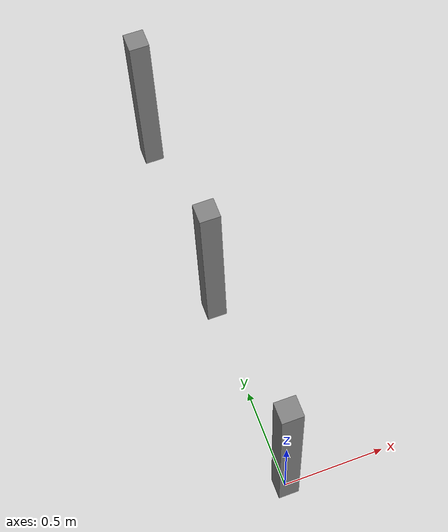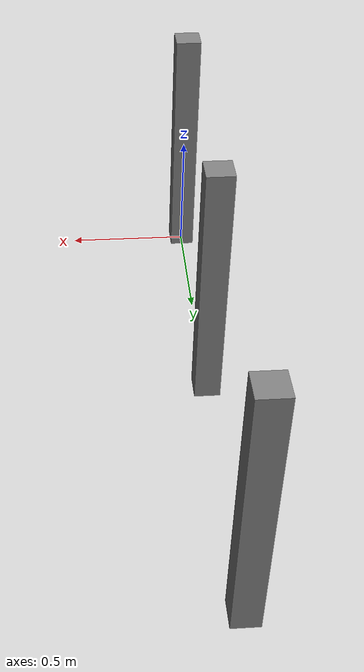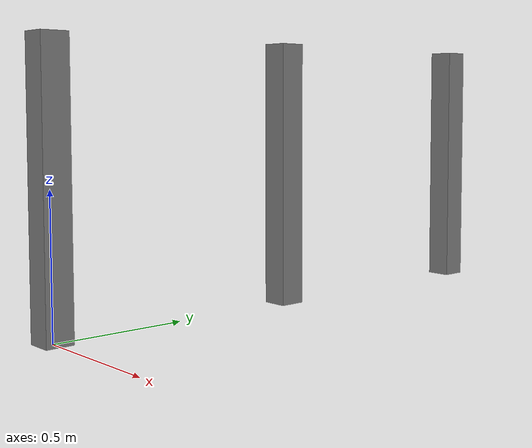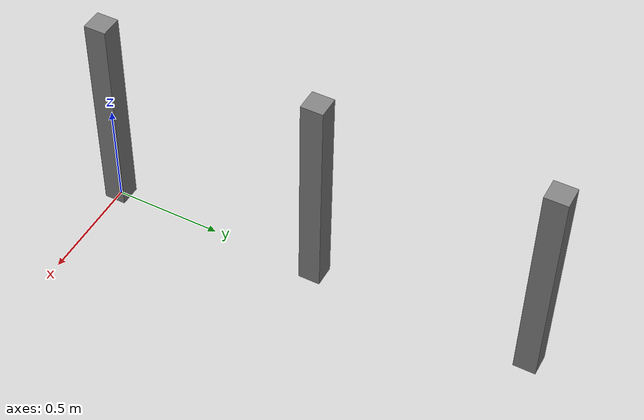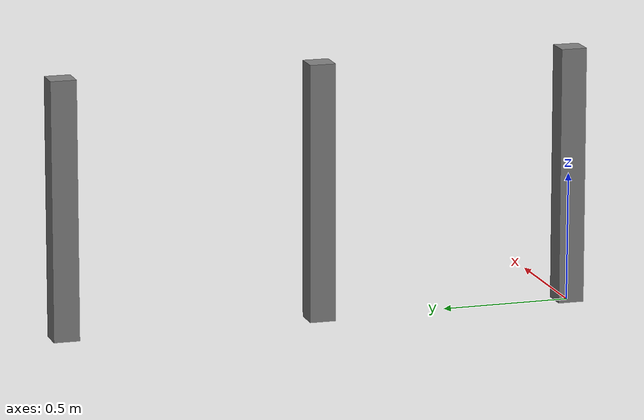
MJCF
<mujoco model="joint_damping">
  <compiler angle="radian"/>
  <worldbody>
    <body name="body1" pos="0 0 0.5">
      <geom type="box" size="0.05 0.05 0.5"/>
      <joint name="hinge_joint" type="hinge" axis="1 0 0" damping="0.1"/>
    </body>

    <body name="body2" pos="0 1 0.5">
      <geom type="box" size="0.05 0.05 0.5"/>
      <joint name="ball_joint" type="ball" damping="0.1"/>
    </body>

    <body name="body3" pos="0 2 0.5">
      <geom type="box" size="0.05 0.05 0.5"/>
      <joint name="slide_joint" type="slide" axis="0 1 0" damping="0.1"/>
    </body>
  </worldbody>
</mujoco>
